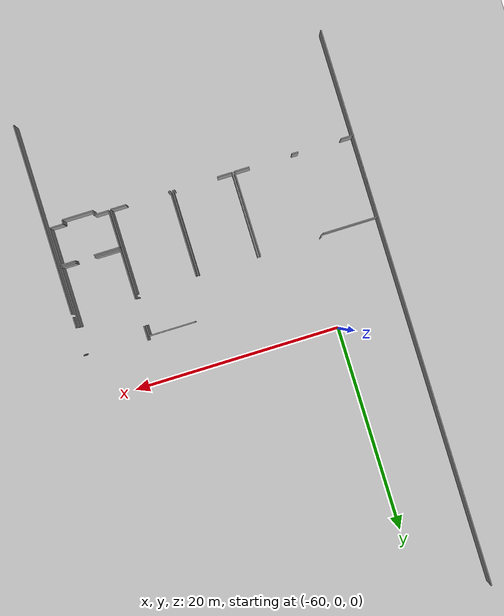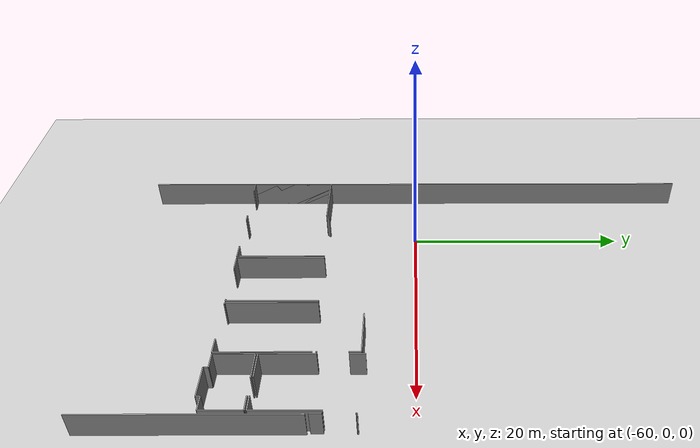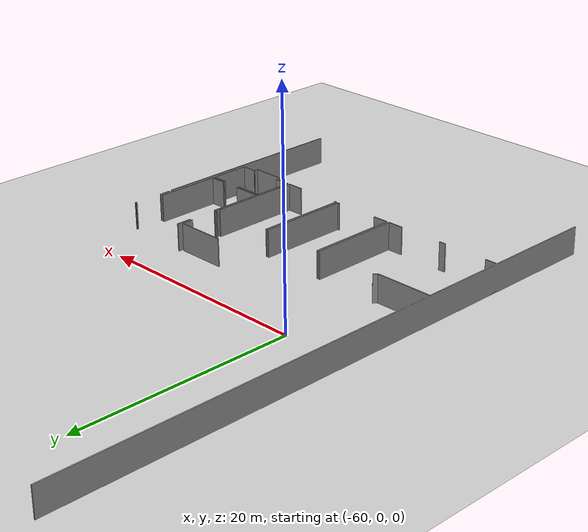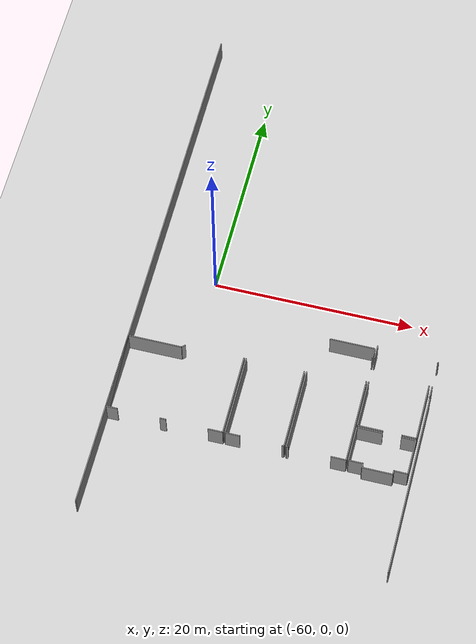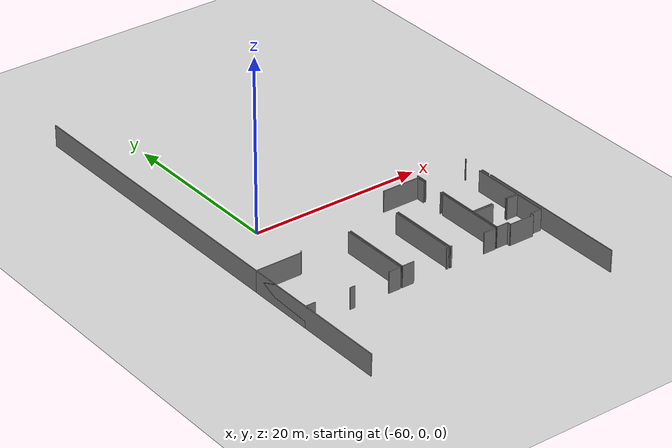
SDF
<sdf version="1.6">
 <world name="default">
  <model name="ground_plane">
   <static>1</static>
   <link name="link">
    <collision name="collision">
     <geometry><plane><normal>0 0 1</normal><size>100 100</size></plane></geometry>
     <surface><friction><ode><mu>100</mu><mu2>50</mu2></ode></friction></surface>
    </collision>
    <visual name="visual">
     <cast_shadows>0</cast_shadows>
     <geometry><plane><normal>0 0 1</normal><size>100 100</size></plane></geometry>
     <material>
      <script><uri>file://media/materials/scripts/gazebo.material</uri><name>Gazebo/Grey</name></script>
     </material>
    </visual>
   </link>
  </model>
  <model name="50041170">
   <static>1</static>
   <link name="Wall_17">
    <collision name="Wall_17_Collision">
     <geometry><box><size>4.44517787439 0.1 2.5</size></box></geometry>
     <pose>2.2225889372 0 1.25 0 0 0</pose>
    </collision>
    <visual name="Wall_17_Visual">
     <pose>2.2225889372 0 1.25 0 0 0</pose>
     <geometry><box><size>4.44517787439 0.1 2.5</size></box></geometry>
     <material>
      <script><uri>file://media/materials/scripts/gazebo.material</uri><name>Gazebo/Grey</name></script>
      <ambient>1 1 1 1</ambient>
     </material>
    </visual>
    <pose>19.1036780807 -31.4858938149 0 0 0 0.0</pose>
   </link>
   <link name="Wall_18">
    <collision name="Wall_18_Collision">
     <geometry><box><size>1.03506711942 0.1 2.5</size></box></geometry>
     <pose>0.517533559709 0 1.25 0 0 0</pose>
    </collision>
    <visual name="Wall_18_Visual">
     <pose>0.517533559709 0 1.25 0 0 0</pose>
     <geometry><box><size>1.03506711942 0.1 2.5</size></box></geometry>
     <material>
      <script><uri>file://media/materials/scripts/gazebo.material</uri><name>Gazebo/Grey</name></script>
      <ambient>1 1 1 1</ambient>
     </material>
    </visual>
    <pose>23.5488559551 -31.4858938149 0 0 0 -1.57079632679</pose>
   </link>
   <link name="Wall_19">
    <collision name="Wall_19_Collision">
     <geometry><box><size>0.117773866952 0.1 2.5</size></box></geometry>
     <pose>0.0588869334759 0 1.25 0 0 0</pose>
    </collision>
    <visual name="Wall_19_Visual">
     <pose>0.0588869334759 0 1.25 0 0 0</pose>
     <geometry><box><size>0.117773866952 0.1 2.5</size></box></geometry>
     <material>
      <script><uri>file://media/materials/scripts/gazebo.material</uri><name>Gazebo/Grey</name></script>
      <ambient>1 1 1 1</ambient>
     </material>
    </visual>
    <pose>23.5488559551 -35.1252578465 0 0 0 -1.44109378964</pose>
   </link>
   <link name="Wall_20">
    <collision name="Wall_20_Collision">
     <geometry><box><size>1.41956776999 0.1 2.5</size></box></geometry>
     <pose>0.709783884993 0 1.25 0 0 0</pose>
    </collision>
    <visual name="Wall_20_Visual">
     <pose>0.709783884993 0 1.25 0 0 0</pose>
     <geometry><box><size>1.41956776999 0.1 2.5</size></box></geometry>
     <material>
      <script><uri>file://media/materials/scripts/gazebo.material</uri><name>Gazebo/Grey</name></script>
      <ambient>1 1 1 1</ambient>
     </material>
    </visual>
    <pose>29.5052521342 -39.9559518898 0 0 0 3.14159265359</pose>
   </link>
   <link name="Wall_21">
    <collision name="Wall_21_Collision">
     <geometry><box><size>2.48941639428 0.1 2.5</size></box></geometry>
     <pose>1.24470819714 0 1.25 0 0 0</pose>
    </collision>
    <visual name="Wall_21_Visual">
     <pose>1.24470819714 0 1.25 0 0 0</pose>
     <geometry><box><size>2.48941639428 0.1 2.5</size></box></geometry>
     <material>
      <script><uri>file://media/materials/scripts/gazebo.material</uri><name>Gazebo/Grey</name></script>
      <ambient>1 1 1 1</ambient>
     </material>
    </visual>
    <pose>26.2639713116 -39.9559518898 0 0 0 3.14159265359</pose>
   </link>
   <link name="Wall_22">
    <collision name="Wall_22_Collision">
     <geometry><box><size>4.81558820729 0.1 2.5</size></box></geometry>
     <pose>2.40779410365 0 1.25 0 0 0</pose>
    </collision>
    <visual name="Wall_22_Visual">
     <pose>2.40779410365 0 1.25 0 0 0</pose>
     <geometry><box><size>4.81558820729 0.1 2.5</size></box></geometry>
     <material>
      <script><uri>file://media/materials/scripts/gazebo.material</uri><name>Gazebo/Grey</name></script>
      <ambient>1 1 1 1</ambient>
     </material>
    </visual>
    <pose>23.7745549173 -39.9559518898 0 0 0 1.57079632679</pose>
   </link>
   <link name="Wall_23">
    <collision name="Wall_23_Collision">
     <geometry><box><size>1.39151407445 0.1 2.5</size></box></geometry>
     <pose>0.695757037225 0 1.25 0 0 0</pose>
    </collision>
    <visual name="Wall_23_Visual">
     <pose>0.695757037225 0 1.25 0 0 0</pose>
     <geometry><box><size>1.39151407445 0.1 2.5</size></box></geometry>
     <material>
      <script><uri>file://media/materials/scripts/gazebo.material</uri><name>Gazebo/Grey</name></script>
      <ambient>1 1 1 1</ambient>
     </material>
    </visual>
    <pose>23.7745549173 -32.4965884929 0 0 0 1.57079632679</pose>
   </link>
   <link name="Wall_42">
    <collision name="Wall_42_Collision">
     <geometry><box><size>5.80038877209 0.1 2.5</size></box></geometry>
     <pose>2.90019438605 0 1.25 0 0 0</pose>
    </collision>
    <visual name="Wall_42_Visual">
     <pose>2.90019438605 0 1.25 0 0 0</pose>
     <geometry><box><size>5.80038877209 0.1 2.5</size></box></geometry>
     <material>
      <script><uri>file://media/materials/scripts/gazebo.material</uri><name>Gazebo/Grey</name></script>
      <ambient>1 1 1 1</ambient>
     </material>
    </visual>
    <pose>29.500936181 -34.1555647234 0 0 0 -1.57005224675</pose>
   </link>
   <link name="Wall_43">
    <collision name="Wall_43_Collision">
     <geometry><box><size>1.4497794421 0.1 2.5</size></box></geometry>
     <pose>0.72488972105 0 1.25 0 0 0</pose>
    </collision>
    <visual name="Wall_43_Visual">
     <pose>0.72488972105 0 1.25 0 0 0</pose>
     <geometry><box><size>1.4497794421 0.1 2.5</size></box></geometry>
     <material>
      <script><uri>file://media/materials/scripts/gazebo.material</uri><name>Gazebo/Grey</name></script>
      <ambient>1 1 1 1</ambient>
     </material>
    </visual>
    <pose>11.536923614 -43.7473898004 0 0 0 3.14159265359</pose>
   </link>
   <link name="Wall_44">
    <collision name="Wall_44_Collision">
     <geometry><box><size>0.62010091714 0.1 2.5</size></box></geometry>
     <pose>0.31005045857 0 1.25 0 0 0</pose>
    </collision>
    <visual name="Wall_44_Visual">
     <pose>0.31005045857 0 1.25 0 0 0</pose>
     <geometry><box><size>0.62010091714 0.1 2.5</size></box></geometry>
     <material>
      <script><uri>file://media/materials/scripts/gazebo.material</uri><name>Gazebo/Grey</name></script>
      <ambient>1 1 1 1</ambient>
     </material>
    </visual>
    <pose>5.95449208213 -43.7473898004 0 0 0 3.14159265359</pose>
   </link>
   <link name="Wall_45">
    <collision name="Wall_45_Collision">
     <geometry><box><size>1.15807178446 0.1 2.5</size></box></geometry>
     <pose>0.579035892228 0 1.25 0 0 0</pose>
    </collision>
    <visual name="Wall_45_Visual">
     <pose>0.579035892228 0 1.25 0 0 0</pose>
     <geometry><box><size>1.15807178446 0.1 2.5</size></box></geometry>
     <material>
      <script><uri>file://media/materials/scripts/gazebo.material</uri><name>Gazebo/Grey</name></script>
      <ambient>1 1 1 1</ambient>
     </material>
    </visual>
    <pose>1.15807178446 -43.7473898004 0 0 0 3.14159265359</pose>
   </link>
   <link name="Wall_46">
    <collision name="Wall_46_Collision">
     <geometry><box><size>7.91456951541 0.1 2.5</size></box></geometry>
     <pose>3.9572847577 0 1.25 0 0 0</pose>
    </collision>
    <visual name="Wall_46_Visual">
     <pose>3.9572847577 0 1.25 0 0 0</pose>
     <geometry><box><size>7.91456951541 0.1 2.5</size></box></geometry>
     <material>
      <script><uri>file://media/materials/scripts/gazebo.material</uri><name>Gazebo/Grey</name></script>
      <ambient>1 1 1 1</ambient>
     </material>
    </visual>
    <pose>0.0 -43.7473898004 0 0 0 1.57079632679</pose>
   </link>
   <link name="Wall_47">
    <collision name="Wall_47_Collision">
     <geometry><box><size>5.35635175018 0.1 2.5</size></box></geometry>
     <pose>2.67817587509 0 1.25 0 0 0</pose>
    </collision>
    <visual name="Wall_47_Visual">
     <pose>2.67817587509 0 1.25 0 0 0</pose>
     <geometry><box><size>5.35635175018 0.1 2.5</size></box></geometry>
     <material>
      <script><uri>file://media/materials/scripts/gazebo.material</uri><name>Gazebo/Grey</name></script>
      <ambient>1 1 1 1</ambient>
     </material>
    </visual>
    <pose>0.0 -35.832820285 0 0 0 0.0</pose>
   </link>
   <link name="Wall_48">
    <collision name="Wall_48_Collision">
     <geometry><box><size>0.426449809548 0.1 2.5</size></box></geometry>
     <pose>0.213224904774 0 1.25 0 0 0</pose>
    </collision>
    <visual name="Wall_48_Visual">
     <pose>0.213224904774 0 1.25 0 0 0</pose>
     <geometry><box><size>0.426449809548 0.1 2.5</size></box></geometry>
     <material>
      <script><uri>file://media/materials/scripts/gazebo.material</uri><name>Gazebo/Grey</name></script>
      <ambient>1 1 1 1</ambient>
     </material>
    </visual>
    <pose>5.35635175018 -35.832820285 0 0 0 0.78476671747</pose>
   </link>
   <link name="Wall_49">
    <collision name="Wall_49_Collision">
     <geometry><box><size>8.21593026193 0.1 2.5</size></box></geometry>
     <pose>4.10796513096 0 1.25 0 0 0</pose>
    </collision>
    <visual name="Wall_49_Visual">
     <pose>4.10796513096 0 1.25 0 0 0</pose>
     <geometry><box><size>8.21593026193 0.1 2.5</size></box></geometry>
     <material>
      <script><uri>file://media/materials/scripts/gazebo.material</uri><name>Gazebo/Grey</name></script>
      <ambient>1 1 1 1</ambient>
     </material>
    </visual>
    <pose>11.5272761893 -35.5314652026 0 0 0 -1.56962209252</pose>
   </link>
   <link name="Wall_50">
    <collision name="Wall_50_Collision">
     <geometry><box><size>0.197645266732 0.1 2.5</size></box></geometry>
     <pose>0.0988226333661 0 1.25 0 0 0</pose>
    </collision>
    <visual name="Wall_50_Visual">
     <pose>0.0988226333661 0 1.25 0 0 0</pose>
     <geometry><box><size>0.197645266732 0.1 2.5</size></box></geometry>
     <material>
      <script><uri>file://media/materials/scripts/gazebo.material</uri><name>Gazebo/Grey</name></script>
      <ambient>1 1 1 1</ambient>
     </material>
    </visual>
    <pose>17.5231506458 -43.7303798673 0 0 0 3.14159265359</pose>
   </link>
   <link name="Wall_51">
    <collision name="Wall_51_Collision">
     <geometry><box><size>1.44889086351 0.1 2.5</size></box></geometry>
     <pose>0.724445431754 0 1.25 0 0 0</pose>
    </collision>
    <visual name="Wall_51_Visual">
     <pose>0.724445431754 0 1.25 0 0 0</pose>
     <geometry><box><size>1.44889086351 0.1 2.5</size></box></geometry>
     <material>
      <script><uri>file://media/materials/scripts/gazebo.material</uri><name>Gazebo/Grey</name></script>
      <ambient>1 1 1 1</ambient>
     </material>
    </visual>
    <pose>13.2096093428 -43.7303798673 0 0 0 3.14159265359</pose>
   </link>
   <link name="Wall_52">
    <collision name="Wall_52_Collision">
     <geometry><box><size>8.19891466472 0.1 2.5</size></box></geometry>
     <pose>4.09945733236 0 1.25 0 0 0</pose>
    </collision>
    <visual name="Wall_52_Visual">
     <pose>4.09945733236 0 1.25 0 0 0</pose>
     <geometry><box><size>8.19891466472 0.1 2.5</size></box></geometry>
     <material>
      <script><uri>file://media/materials/scripts/gazebo.material</uri><name>Gazebo/Grey</name></script>
      <ambient>1 1 1 1</ambient>
     </material>
    </visual>
    <pose>11.7607184793 -43.7303798673 0 0 0 1.57079632679</pose>
   </link>
   <link name="Wall_53">
    <collision name="Wall_53_Collision">
     <geometry><box><size>8.19891527889 0.1 2.5</size></box></geometry>
     <pose>4.09945763945 0 1.25 0 0 0</pose>
    </collision>
    <visual name="Wall_53_Visual">
     <pose>4.09945763945 0 1.25 0 0 0</pose>
     <geometry><box><size>8.19891527889 0.1 2.5</size></box></geometry>
     <material>
      <script><uri>file://media/materials/scripts/gazebo.material</uri><name>Gazebo/Grey</name></script>
      <ambient>1 1 1 1</ambient>
     </material>
    </visual>
    <pose>17.5263241408 -35.5314652026 0 0 0 -1.57118338959</pose>
   </link>
   <link name="Wall_54">
    <collision name="Wall_54_Collision">
     <geometry><box><size>1.48811526134 0.1 2.5</size></box></geometry>
     <pose>0.744057630669 0 1.25 0 0 0</pose>
    </collision>
    <visual name="Wall_54_Visual">
     <pose>0.744057630669 0 1.25 0 0 0</pose>
     <geometry><box><size>1.48811526134 0.1 2.5</size></box></geometry>
     <material>
      <script><uri>file://media/materials/scripts/gazebo.material</uri><name>Gazebo/Grey</name></script>
      <ambient>1 1 1 1</ambient>
     </material>
    </visual>
    <pose>23.554568246 -43.7561486465 0 0 0 3.14159265359</pose>
   </link>
   <link name="Wall_55">
    <collision name="Wall_55_Collision">
     <geometry><box><size>0.203230617879 0.1 2.5</size></box></geometry>
     <pose>0.10161530894 0 1.25 0 0 0</pose>
    </collision>
    <visual name="Wall_55_Visual">
     <pose>0.10161530894 0 1.25 0 0 0</pose>
     <geometry><box><size>0.203230617879 0.1 2.5</size></box></geometry>
     <material>
      <script><uri>file://media/materials/scripts/gazebo.material</uri><name>Gazebo/Grey</name></script>
      <ambient>1 1 1 1</ambient>
     </material>
    </visual>
    <pose>17.9609660119 -43.7561486465 0 0 0 3.14159265359</pose>
   </link>
   <link name="Wall_56">
    <collision name="Wall_56_Collision">
     <geometry><box><size>8.21922503253 0.1 2.5</size></box></geometry>
     <pose>4.10961251626 0 1.25 0 0 0</pose>
    </collision>
    <visual name="Wall_56_Visual">
     <pose>4.10961251626 0 1.25 0 0 0</pose>
     <geometry><box><size>8.21922503253 0.1 2.5</size></box></geometry>
     <material>
      <script><uri>file://media/materials/scripts/gazebo.material</uri><name>Gazebo/Grey</name></script>
      <ambient>1 1 1 1</ambient>
     </material>
    </visual>
    <pose>17.757735394 -43.7561486465 0 0 0 1.57079632679</pose>
   </link>
   <link name="Wall_57">
    <collision name="Wall_57_Collision">
     <geometry><box><size>8.21922511193 0.1 2.5</size></box></geometry>
     <pose>4.10961255596 0 1.25 0 0 0</pose>
    </collision>
    <visual name="Wall_57_Visual">
     <pose>4.10961255596 0 1.25 0 0 0</pose>
     <geometry><box><size>8.21922511193 0.1 2.5</size></box></geometry>
     <material>
      <script><uri>file://media/materials/scripts/gazebo.material</uri><name>Gazebo/Grey</name></script>
      <ambient>1 1 1 1</ambient>
     </material>
    </visual>
    <pose>23.5534257878 -35.536923614 0 0 0 -1.57065732851</pose>
   </link>
   <link name="Wall_61">
    <collision name="Wall_61_Collision">
     <geometry><box><size>1.34645044588 0.1 2.5</size></box></geometry>
     <pose>0.673225222938 0 1.25 0 0 0</pose>
    </collision>
    <visual name="Wall_61_Visual">
     <pose>0.673225222938 0 1.25 0 0 0</pose>
     <geometry><box><size>1.34645044588 0.1 2.5</size></box></geometry>
     <material>
      <script><uri>file://media/materials/scripts/gazebo.material</uri><name>Gazebo/Grey</name></script>
      <ambient>1 1 1 1</ambient>
     </material>
    </visual>
    <pose>29.4934467329 -43.7574180445 0 0 0 3.14159265359</pose>
   </link>
   <link name="Wall_62">
    <collision name="Wall_62_Collision">
     <geometry><box><size>0.387801085335 0.1 2.5</size></box></geometry>
     <pose>0.193900542668 0 1.25 0 0 0</pose>
    </collision>
    <visual name="Wall_62_Visual">
     <pose>0.193900542668 0 1.25 0 0 0</pose>
     <geometry><box><size>0.387801085335 0.1 2.5</size></box></geometry>
     <material>
      <script><uri>file://media/materials/scripts/gazebo.material</uri><name>Gazebo/Grey</name></script>
      <ambient>1 1 1 1</ambient>
     </material>
    </visual>
    <pose>28.146996287 -43.7574180445 0 0 0 -1.57079632679</pose>
   </link>
   <link name="Wall_63">
    <collision name="Wall_63_Collision">
     <geometry><box><size>2.98029259624 0.1 2.5</size></box></geometry>
     <pose>1.49014629812 0 1.25 0 0 0</pose>
    </collision>
    <visual name="Wall_63_Visual">
     <pose>1.49014629812 0 1.25 0 0 0</pose>
     <geometry><box><size>2.98029259624 0.1 2.5</size></box></geometry>
     <material>
      <script><uri>file://media/materials/scripts/gazebo.material</uri><name>Gazebo/Grey</name></script>
      <ambient>1 1 1 1</ambient>
     </material>
    </visual>
    <pose>28.146996287 -44.1452191298 0 0 0 3.14159265359</pose>
   </link>
   <link name="Wall_64">
    <collision name="Wall_64_Collision">
     <geometry><box><size>0.430452857732 0.1 2.5</size></box></geometry>
     <pose>0.215226428866 0 1.25 0 0 0</pose>
    </collision>
    <visual name="Wall_64_Visual">
     <pose>0.215226428866 0 1.25 0 0 0</pose>
     <geometry><box><size>0.430452857732 0.1 2.5</size></box></geometry>
     <material>
      <script><uri>file://media/materials/scripts/gazebo.material</uri><name>Gazebo/Grey</name></script>
      <ambient>1 1 1 1</ambient>
     </material>
    </visual>
    <pose>25.1667036908 -44.1452191298 0 0 0 1.57079632679</pose>
   </link>
   <link name="Wall_65">
    <collision name="Wall_65_Collision">
     <geometry><box><size>1.40179619815 0.1 2.5</size></box></geometry>
     <pose>0.700898099077 0 1.25 0 0 0</pose>
    </collision>
    <visual name="Wall_65_Visual">
     <pose>0.700898099077 0 1.25 0 0 0</pose>
     <geometry><box><size>1.40179619815 0.1 2.5</size></box></geometry>
     <material>
      <script><uri>file://media/materials/scripts/gazebo.material</uri><name>Gazebo/Grey</name></script>
      <ambient>1 1 1 1</ambient>
     </material>
    </visual>
    <pose>25.1667036908 -43.7147662721 0 0 0 3.14159265359</pose>
   </link>
   <link name="Wall_66">
    <collision name="Wall_66_Collision">
     <geometry><box><size>3.55723398178 0.1 2.5</size></box></geometry>
     <pose>1.77861699089 0 1.25 0 0 0</pose>
    </collision>
    <visual name="Wall_66_Visual">
     <pose>1.77861699089 0 1.25 0 0 0</pose>
     <geometry><box><size>3.55723398178 0.1 2.5</size></box></geometry>
     <material>
      <script><uri>file://media/materials/scripts/gazebo.material</uri><name>Gazebo/Grey</name></script>
      <ambient>1 1 1 1</ambient>
     </material>
    </visual>
    <pose>23.7649074926 -43.7147662721 0 0 0 1.57079632679</pose>
   </link>
   <link name="Wall_67">
    <collision name="Wall_67_Collision">
     <geometry><box><size>2.50629938752 0.1 2.5</size></box></geometry>
     <pose>1.25314969376 0 1.25 0 0 0</pose>
    </collision>
    <visual name="Wall_67_Visual">
     <pose>1.25314969376 0 1.25 0 0 0</pose>
     <geometry><box><size>2.50629938752 0.1 2.5</size></box></geometry>
     <material>
      <script><uri>file://media/materials/scripts/gazebo.material</uri><name>Gazebo/Grey</name></script>
      <ambient>1 1 1 1</ambient>
     </material>
    </visual>
    <pose>23.7649074926 -40.1575322903 0 0 0 0.0</pose>
   </link>
   <link name="Wall_68">
    <collision name="Wall_68_Collision">
     <geometry><box><size>1.40903176668 0.1 2.5</size></box></geometry>
     <pose>0.704515883342 0 1.25 0 0 0</pose>
    </collision>
    <visual name="Wall_68_Visual">
     <pose>0.704515883342 0 1.25 0 0 0</pose>
     <geometry><box><size>1.40903176668 0.1 2.5</size></box></geometry>
     <material>
      <script><uri>file://media/materials/scripts/gazebo.material</uri><name>Gazebo/Grey</name></script>
      <ambient>1 1 1 1</ambient>
     </material>
    </visual>
    <pose>28.0863190632 -40.1575322903 0 0 0 0.0</pose>
   </link>
   <link name="Wall_69">
    <collision name="Wall_69_Collision">
     <geometry><box><size>3.59988625775 0.1 2.5</size></box></geometry>
     <pose>1.79994312888 0 1.25 0 0 0</pose>
    </collision>
    <visual name="Wall_69_Visual">
     <pose>1.79994312888 0 1.25 0 0 0</pose>
     <geometry><box><size>3.59988625775 0.1 2.5</size></box></geometry>
     <material>
      <script><uri>file://media/materials/scripts/gazebo.material</uri><name>Gazebo/Grey</name></script>
      <ambient>1 1 1 1</ambient>
     </material>
    </visual>
    <pose>29.4953508299 -40.1575322903 0 0 0 -1.57132525936</pose>
   </link>
   <link name="Wall_254">
    <collision name="Wall_254_Collision">
     <geometry><box><size>1.04090635016 0.1 2.5</size></box></geometry>
     <pose>0.520453175082 0 1.25 0 0 0</pose>
    </collision>
    <visual name="Wall_254_Visual">
     <pose>0.520453175082 0 1.25 0 0 0</pose>
     <geometry><box><size>1.04090635016 0.1 2.5</size></box></geometry>
     <material>
      <script><uri>file://media/materials/scripts/gazebo.material</uri><name>Gazebo/Grey</name></script>
      <ambient>1 1 1 1</ambient>
     </material>
    </visual>
    <pose>29.8127003269 -35.2257941671 0 0 0 1.57079632679</pose>
   </link>
   <link name="Wall_255">
    <collision name="Wall_255_Collision">
     <geometry><box><size>0.0882231601663 0.1 2.5</size></box></geometry>
     <pose>0.0441115800831 0 1.25 0 0 0</pose>
    </collision>
    <visual name="Wall_255_Visual">
     <pose>0.0441115800831 0 1.25 0 0 0</pose>
     <geometry><box><size>0.0882231601663 0.1 2.5</size></box></geometry>
     <material>
      <script><uri>file://media/materials/scripts/gazebo.material</uri><name>Gazebo/Grey</name></script>
      <ambient>1 1 1 1</ambient>
     </material>
    </visual>
    <pose>29.8127003269 -31.6058519247 0 0 0 1.57079632679</pose>
   </link>
   <link name="Wall_256">
    <collision name="Wall_256_Collision">
     <geometry><box><size>0.0880962203675 0.1 2.5</size></box></geometry>
     <pose>0.0440481101837 0 1.25 0 0 0</pose>
    </collision>
    <visual name="Wall_256_Visual">
     <pose>0.0440481101837 0 1.25 0 0 0</pose>
     <geometry><box><size>0.0880962203675 0.1 2.5</size></box></geometry>
     <material>
      <script><uri>file://media/materials/scripts/gazebo.material</uri><name>Gazebo/Grey</name></script>
      <ambient>1 1 1 1</ambient>
     </material>
    </visual>
    <pose>29.8127003269 -31.5176287646 0 0 0 0.0</pose>
   </link>
   <link name="Wall_376">
    <collision name="Wall_376_Collision">
     <geometry><box><size>18.4124908762 0.1 2.5</size></box></geometry>
     <pose>9.2062454381 0 1.25 0 0 0</pose>
    </collision>
    <visual name="Wall_376_Visual">
     <pose>9.2062454381 0 1.25 0 0 0</pose>
     <geometry><box><size>18.4124908762 0.1 2.5</size></box></geometry>
     <material>
      <script><uri>file://media/materials/scripts/gazebo.material</uri><name>Gazebo/Grey</name></script>
      <ambient>1 1 1 1</ambient>
     </material>
    </visual>
    <pose>29.8710926343 -53.8940687379 0 0 0 1.57079632679</pose>
   </link>
   <link name="Wall_446">
    <collision name="Wall_446_Collision">
     <geometry><box><size>53.9409095237 0.1 2.5</size></box></geometry>
     <pose>26.9704547618 0 1.25 0 0 0</pose>
    </collision>
    <visual name="Wall_446_Visual">
     <pose>26.9704547618 0 1.25 0 0 0</pose>
     <geometry><box><size>53.9409095237 0.1 2.5</size></box></geometry>
     <material>
      <script><uri>file://media/materials/scripts/gazebo.material</uri><name>Gazebo/Grey</name></script>
      <ambient>1 1 1 1</ambient>
     </material>
    </visual>
    <pose>0.0 -53.9409095237 0 0 0 1.57079632679</pose>
   </link>
   <pose>-66.45 26.9909095237 0 0 0 0</pose>
  </model>
 </world>
</sdf>
